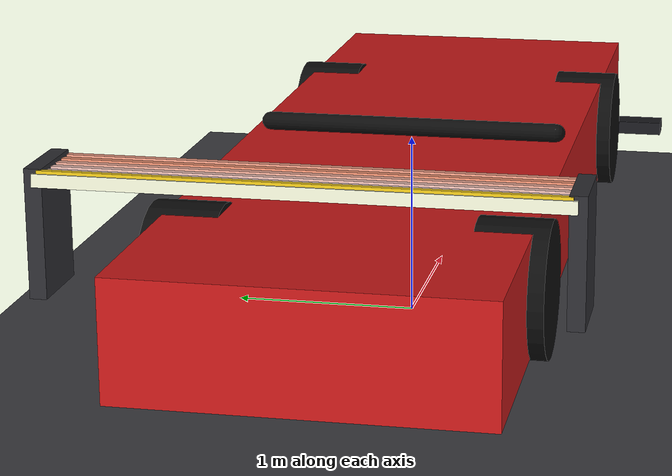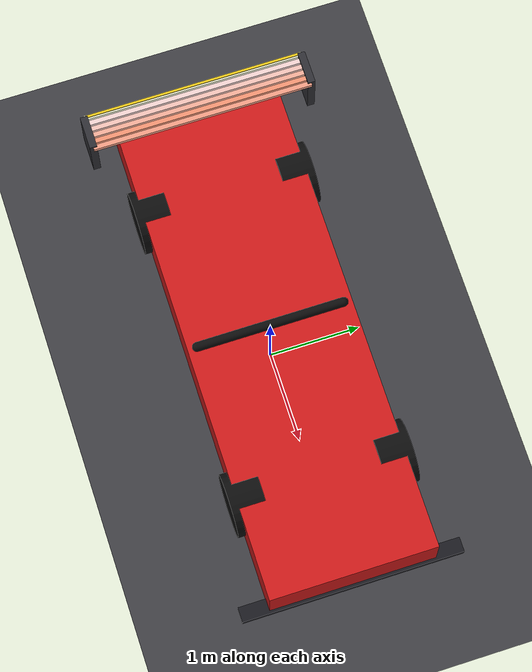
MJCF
<mujoco model="f1_part6_hero">
  <option gravity="0 0 -9.81" timestep="0.005"/>
  <visual>
    <headlight diffuse=".9 .9 .9" ambient=".30 .30 .30" specular="0.05 0.05 0.05"/>
    <rgba haze="0.30 0.36 0.45 1"/>
    <quality shadowsize="4096"/>
    <global offwidth="1280" offheight="720"/>
  </visual>
  <asset>
    <texture type="skybox" builtin="gradient"
             rgb1="0.55 0.70 0.92" rgb2="0.15 0.20 0.35"
             width="800" height="800"/>
    <texture name="floor_tex" type="2d" builtin="checker"
             rgb1="0.30 0.30 0.32" rgb2="0.18 0.18 0.20"
             width="300" height="300"/>
    <material name="floor" texture="floor_tex" texrepeat="40 40"
              reflectance="0.10" specular="0.20" shininess="0.20"/>
    <material name="chassis" rgba="0.80 0.10 0.10 1" specular="0.7" shininess="0.7"/>
    <material name="halo"    rgba="0.05 0.05 0.05 1" specular="0.4" shininess="0.5"/>
    <material name="tyre"    rgba="0.05 0.05 0.05 1" specular="0.2" shininess="0.2"/>
    <material name="wing_dark"  rgba="0.10 0.10 0.12 1" specular="0.4" shininess="0.5"/>
    <material name="endplate" rgba="0.18 0.18 0.20 1" specular="0.5" shininess="0.6"/>
    <material name="gurney"   rgba="0.95 0.80 0.10 1" specular="0.7" shininess="0.8"/>
  </asset>
  <worldbody>
    <light name="sun"  diffuse="1.0 0.95 0.85" pos="20 -20 25" dir="-0.6 0.6 -0.8"
           castshadow="true"/>
    <light name="fill" diffuse="0.35 0.40 0.55" pos="-15 15 18" dir="0.5 -0.5 -0.6"
           castshadow="false"/>
    <geom name="ground" type="plane" pos="0 0 0" size="30 30 1" material="floor"/>

    <body name="car" pos="0 0 0.36000000000000004">
      <joint name="free" type="free"/>
      <inertial pos="0 0 0" mass="830" diaginertia="200 1350 1500"/>
      <geom name="chassis" type="box"
            size="2.750 0.900 0.300"
            pos="0 0 0.35"
            material="chassis"/>
      <geom name="halo" type="capsule"
            fromto="0 -0.8 0.7
                    0 0.8 0.7"
            size="0.05" material="halo"/>
      <!-- Rear-wing segments coloured by synthetic Cp -->
      <geom name="wing_seg_0" type="box" size="0.025 1.200 0.03" pos="-2.650 0 1.050" quat="0.9990 0 0.0436 0" rgba="0.95 0.96 0.85 1"/>
      <geom name="wing_seg_1" type="box" size="0.025 1.200 0.03" pos="-2.580 0 1.050" quat="0.9990 0 0.0436 0" rgba="0.95 0.83 0.82 1"/>
      <geom name="wing_seg_2" type="box" size="0.025 1.200 0.03" pos="-2.510 0 1.050" quat="0.9990 0 0.0436 0" rgba="0.95 0.76 0.72 1"/>
      <geom name="wing_seg_3" type="box" size="0.025 1.200 0.03" pos="-2.440 0 1.050" quat="0.9990 0 0.0436 0" rgba="0.95 0.68 0.60 1"/>
      <geom name="wing_seg_4" type="box" size="0.025 1.200 0.03" pos="-2.370 0 1.050" quat="0.9990 0 0.0436 0" rgba="0.95 0.58 0.45 1"/>
      <geom name="wing_seg_5" type="box" size="0.025 1.200 0.03" pos="-2.300 0 1.050" quat="0.9990 0 0.0436 0" rgba="0.95 0.62 0.52 1"/>
      <!-- Wing endplates -->
      <geom name="rear_wing_endL" type="box" size="0.18 0.04 0.30"
            pos="-2.475 1.200 0.8"
            material="endplate"/>
      <geom name="rear_wing_endR" type="box" size="0.18 0.04 0.30"
            pos="-2.475 -1.200 0.8"
            material="endplate"/>
      <!-- Gurney flap on the trailing edge (visible bright strip) -->
      <geom name="gurney_strip" type="box"
            size="0.012 1.180 0.0080"
            pos="-2.650 0 1.0880"
            material="gurney"/>
      <!-- Front wing -->
      <geom name="front_wing" type="box"
            size="0.08 1.200 0.04"
            pos="2.700 0 0.10"
            material="wing_dark"/>
      <!-- Four wheels -->
      <geom name="wheel_FL" type="cylinder" size="0.340 0.180"
            pos="1.625  0.800 0.340"
            quat="0.7071 0.7071 0 0" material="tyre"/>
      <geom name="wheel_FR" type="cylinder" size="0.340 0.180"
            pos="1.625 -0.800 0.340"
            quat="0.7071 0.7071 0 0" material="tyre"/>
      <geom name="wheel_RL" type="cylinder" size="0.340 0.180"
            pos="-1.625  0.800 0.340"
            quat="0.7071 0.7071 0 0" material="tyre"/>
      <geom name="wheel_RR" type="cylinder" size="0.340 0.180"
            pos="-1.625 -0.800 0.340"
            quat="0.7071 0.7071 0 0" material="tyre"/>
    </body>
  </worldbody>
</mujoco>
